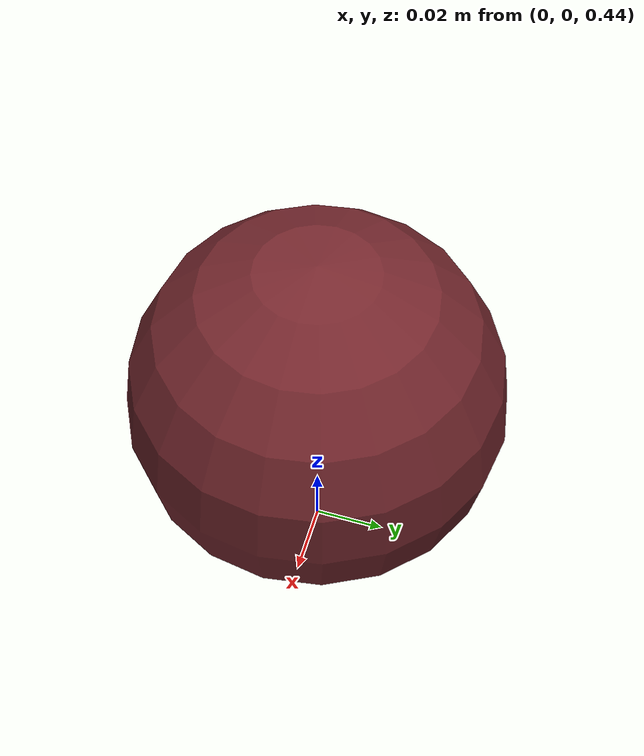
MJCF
<mujoco>
  <include file="./common/materials.xml"/>
  <option  gravity="0 0 -9.8"/>
  <compiler autolimits="true"/>

  <asset>
    <texture name="grid" type="2d" builtin="checker" width="512" height="512" mark="edge" rgb1="0.4314 0.5294 0.6431" rgb2="0.8157 0.8549 0.9059"
      markrgb="0.8 0.8 0.8"/>
    <texture name="sphere" type="2d" builtin="checker" width="128" height="128"  rgb1="0.75 0.15 0.15" rgb2="0.15 0.15 0.20"/>

    <material name="grid" texture="grid" texrepeat="1 1" texuniform="true" reflectance=".2"/>
    <material name="sphere" texture="sphere" />
  </asset>

  <worldbody>
    <light name="light" pos="0 0 3" directional = "true"/>
    <geom type="plane" size="10 10 .1" material="motphys-ground"/>
    <body name="sphere" pos="0 0 0.5">
      <freejoint/>
      <geom type="sphere" size = "0.05" material = "sphere"/>
    </body>
  </worldbody>

</mujoco>

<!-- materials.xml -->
<!--
Common textures, colors and materials to be used throughout this suite. Some
materials such as xxx_highlight are activated on occurence of certain events,
for example receiving a positive reward.
-->
<mujoco>
  <asset>
    <texture name="motphys-ground" type="2d" file="motphys-ground.png" />
    <material name="motphys-ground" texture="motphys-ground" texuniform="true"
      texrepeat="0.4 0.4" />
  </asset>
</mujoco>
